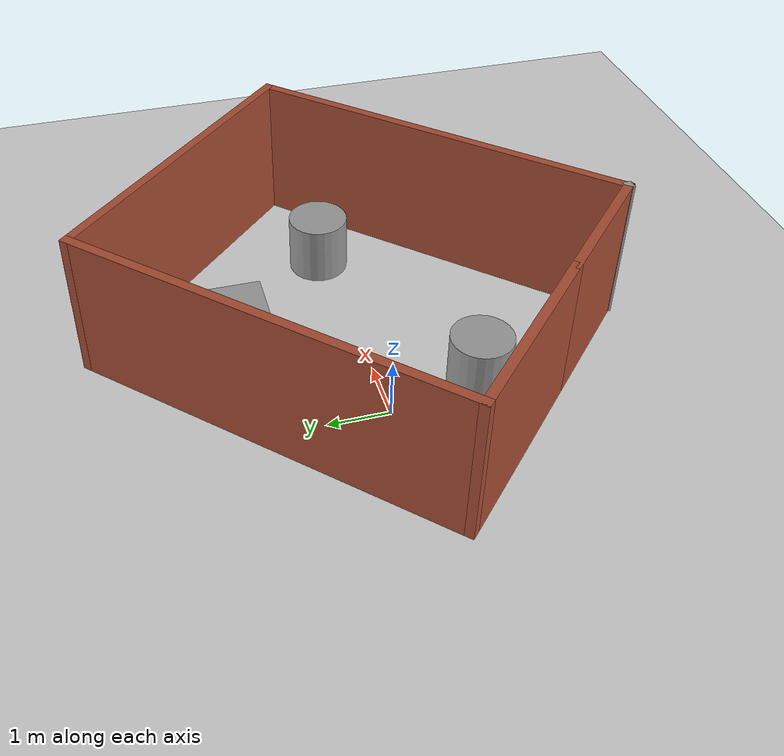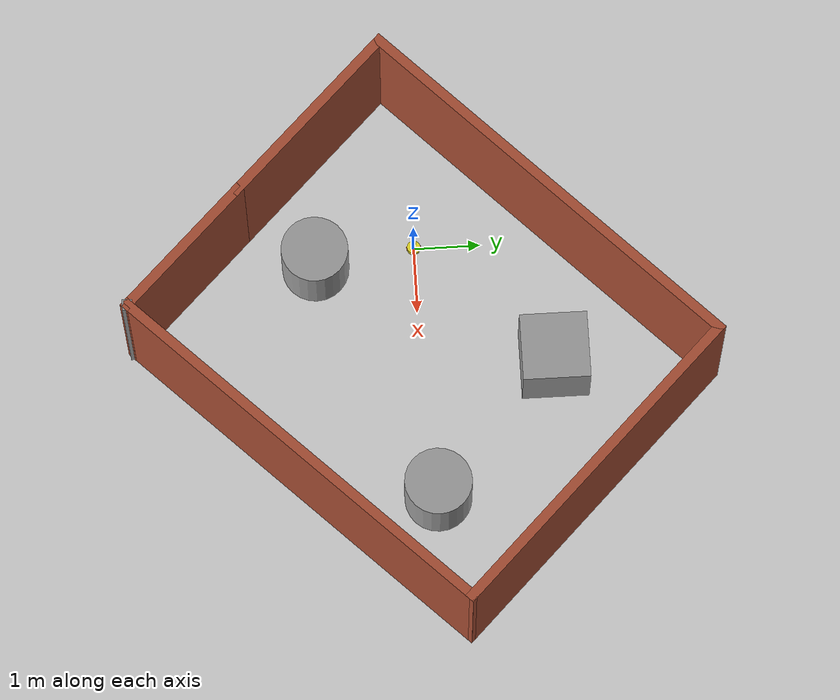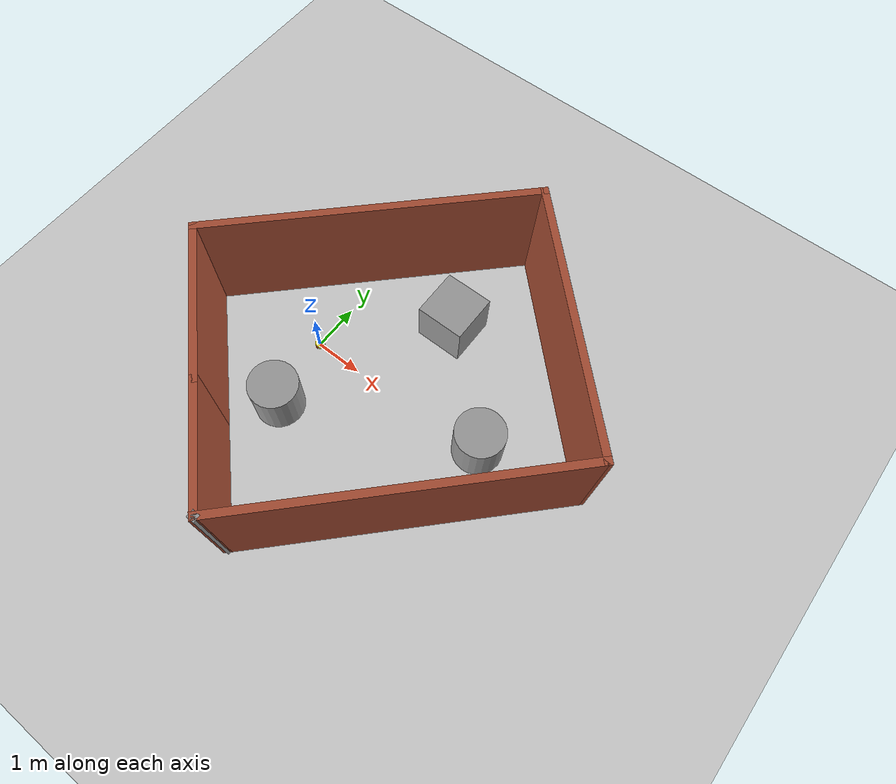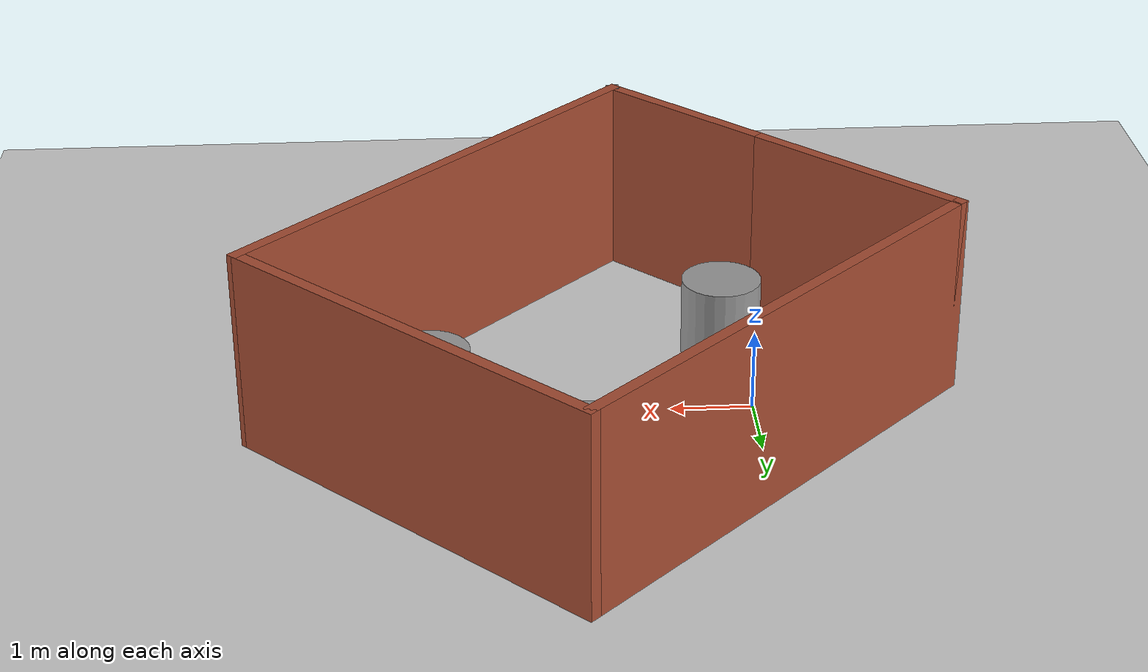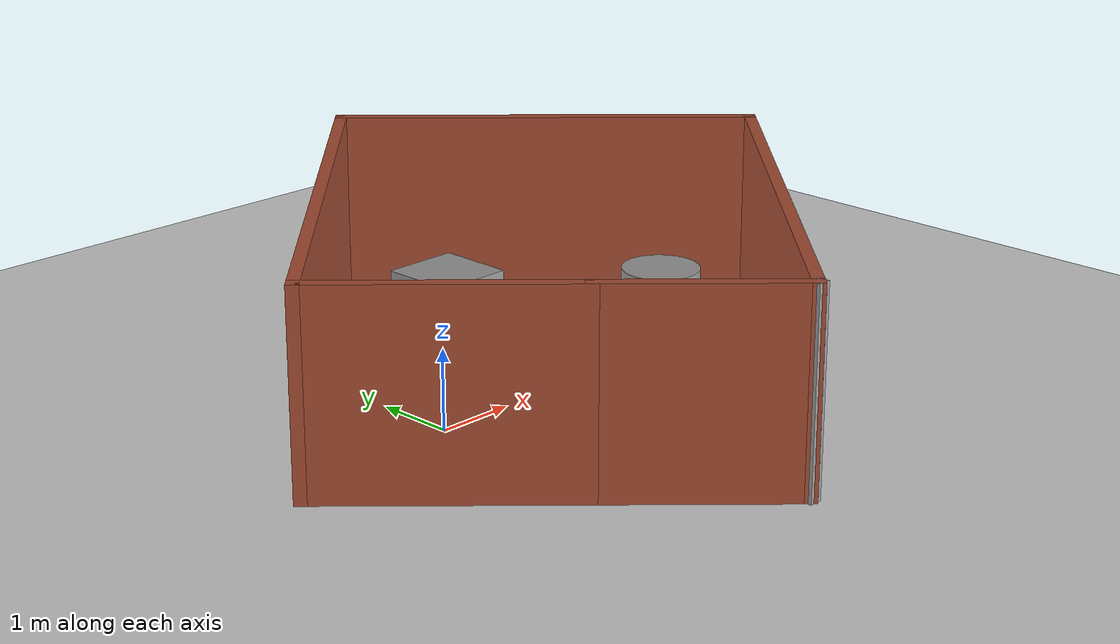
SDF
<sdf version="1.6">
 <world name="default">
  <light name="sun" type="directional">
   <pose>0 0 10 0 -0 0</pose>
   <diffuse>0.8 0.8 0.8 1</diffuse>
   <specular>0.2 0.2 0.2 1</specular>
   <attenuation>
    <range>1000</range>
    <constant>0.9</constant>
    <linear>0.01</linear>
    <quadratic>0.001</quadratic>
   </attenuation>
   <direction>-0.5 0.1 -0.9</direction>
  </light>
  <model name="ground_plane">
   <static>1</static>
   <link name="link">
    <collision name="collision">
     <geometry><plane><normal>0 0 1</normal><size>100 100</size></plane></geometry>
     <surface>
      <contact><collide_bitmask>65535</collide_bitmask></contact>
      <friction><ode><mu>100</mu><mu2>50</mu2></ode></friction>
     </surface>
    </collision>
    <visual name="visual">
     <cast_shadows>0</cast_shadows>
     <geometry><plane><normal>0 0 1</normal><size>100 100</size></plane></geometry>
     <material>
      <script><uri>file://media/materials/scripts/gazebo.material</uri><name>Gazebo/Grey</name></script>
     </material>
    </visual>
   </link>
  </model>
  <gravity>0 0 -9.8</gravity>
  <magnetic_field>6e-06 2.3e-05 -4.2e-05</magnetic_field>
  <atmosphere type="adiabatic"/>
  <physics name="default_physics" default="0" type="ode">
   <max_step_size>0.001</max_step_size>
   <real_time_factor>1</real_time_factor>
   <real_time_update_rate>1000</real_time_update_rate>
  </physics>
  <scene><ambient>0.4 0.4 0.4 1</ambient><background>0.7 0.7 0.7 1</background><shadows>1</shadows></scene>
  <audio><device>default</device></audio>
  <spherical_coordinates>
   <surface_model>EARTH_WGS84</surface_model>
   <latitude_deg>0</latitude_deg>
   <longitude_deg>0</longitude_deg>
   <elevation>0</elevation>
   <heading_deg>0</heading_deg>
  </spherical_coordinates>
  <model name="mycar">
   <link name="base_footprint">
    <inertial>
     <pose>0.00127 0 0.093611 0 -0 0</pose>
     <mass>0.63</mass>
     <inertia>
      <ixx>0.00557395</ixx>
      <ixy>0</ixy>
      <ixz>-1.11111e-05</ixz>
      <iyy>0.00563694</iyy>
      <iyz>0</iyz>
      <izz>0.00261003</izz>
     </inertia>
    </inertial>
    <collision name="base_footprint_fixed_joint_lump__base_link_collision">
     <pose>0 0 0.055 0 -0 0</pose>
     <geometry><cylinder><length>0.08</length><radius>0.1</radius></cylinder></geometry>
    </collision>
    <collision name="base_footprint_fixed_joint_lump__camera_collision_1">
     <pose>0.08 0 0.1075 0 -0 0</pose>
     <geometry><box><size>0.01 0.025 0.025</size></box></geometry>
    </collision>
    <collision name="base_footprint_fixed_joint_lump__support_collision_2">
     <pose>0 0 0.17 0 -0 0</pose>
     <geometry><cylinder><length>0.15</length><radius>0.01</radius></cylinder></geometry>
    </collision>
    <collision name="base_footprint_fixed_joint_lump__laser_collision_3">
     <pose>0 0 0.27 0 -0 0</pose>
     <geometry><cylinder><length>0.05</length><radius>0.03</radius></cylinder></geometry>
    </collision>
    <visual name="base_footprint_visual"><geometry><sphere><radius>0.001</radius></sphere></geometry></visual>
    <visual name="base_footprint_fixed_joint_lump__base_link_visual_1">
     <pose>0 0 0.055 0 -0 0</pose>
     <geometry><cylinder><length>0.08</length><radius>0.1</radius></cylinder></geometry>
     <material>
      <script><name>Gazebo/Yellow</name><uri>file://media/materials/scripts/gazebo.material</uri></script>
     </material>
    </visual>
    <visual name="base_footprint_fixed_joint_lump__camera_visual_2">
     <pose>0.08 0 0.1075 0 -0 0</pose>
     <geometry><box><size>0.01 0.025 0.025</size></box></geometry>
     <material>
      <script><name>Gazebo/Blue</name><uri>file://media/materials/scripts/gazebo.material</uri></script>
     </material>
    </visual>
    <visual name="base_footprint_fixed_joint_lump__support_visual_3">
     <pose>0 0 0.17 0 -0 0</pose>
     <geometry><cylinder><length>0.15</length><radius>0.01</radius></cylinder></geometry>
     <material>
      <script><name>Gazebo/White</name><uri>file://media/materials/scripts/gazebo.material</uri></script>
     </material>
    </visual>
    <visual name="base_footprint_fixed_joint_lump__laser_visual_4">
     <pose>0 0 0.27 0 -0 0</pose>
     <geometry><cylinder><length>0.05</length><radius>0.03</radius></cylinder></geometry>
     <material>
      <script><name>Gazebo/Black</name><uri>file://media/materials/scripts/gazebo.material</uri></script>
     </material>
    </visual>
    <sensor name="rplidar" type="ray">
     <visualize>1</visualize>
     <update_rate>5</update_rate>
     <ray>
      <scan>
       <horizontal>
        <samples>360</samples>
        <resolution>1</resolution>
        <min_angle>-3.14159</min_angle>
        <max_angle>3.14159</max_angle>
       </horizontal>
       <vertical><samples>1</samples><min_angle>0</min_angle><max_angle>0</max_angle></vertical>
      </scan>
      <range><min>0.1</min><max>10</max><resolution>0.01</resolution></range>
      <noise><type>gaussian</type><mean>0</mean><stddev>0.01</stddev></noise>
     </ray>
     <plugin name="gazebo_rplidar" filename="libgazebo_ros_laser.so">
      <topicName>/scan</topicName>
      <frameName>laser</frameName>
      <robotNamespace>/</robotNamespace>
     </plugin>
     <pose>0 0 0.27 0 -0 0</pose>
    </sensor>
   </link>
   <link name="back_wheel">
    <pose>-0.0925 0 0.0075 0 -0 0</pose>
    <inertial>
     <mass>0.03</mass>
     <inertia>
      <ixx>6.75e-07</ixx>
      <ixy>0</ixy>
      <ixz>0</ixz>
      <iyy>6.75e-07</iyy>
      <iyz>0</iyz>
      <izz>6.75e-07</izz>
     </inertia>
    </inertial>
    <collision name="back_wheel_collision">
     <geometry><sphere><radius>0.0075</radius></sphere></geometry>
    </collision>
    <visual name="back_wheel_visual">
     <geometry><sphere><radius>0.0075</radius></sphere></geometry>
     <material>
      <script><name>Gazebo/Red</name><uri>file://media/materials/scripts/gazebo.material</uri></script>
     </material>
    </visual>
   </link>
   <joint name="back_wheel2base_link" type="revolute">
    <child>back_wheel</child>
    <parent>base_footprint</parent>
    <axis>
     <xyz>1 1 1</xyz>
     <limit><lower>-1e+16</lower><upper>1e+16</upper></limit>
     <dynamics><spring_reference>0</spring_reference><spring_stiffness>0</spring_stiffness></dynamics>
     <use_parent_model_frame>1</use_parent_model_frame>
    </axis>
   </joint>
   <link name="front_wheel">
    <pose>0.0925 0 0.0075 0 -0 0</pose>
    <inertial>
     <mass>0.03</mass>
     <inertia>
      <ixx>6.75e-07</ixx>
      <ixy>0</ixy>
      <ixz>0</ixz>
      <iyy>6.75e-07</iyy>
      <iyz>0</iyz>
      <izz>6.75e-07</izz>
     </inertia>
    </inertial>
    <collision name="front_wheel_collision">
     <geometry><sphere><radius>0.0075</radius></sphere></geometry>
    </collision>
    <visual name="front_wheel_visual">
     <geometry><sphere><radius>0.0075</radius></sphere></geometry>
     <material>
      <script><name>Gazebo/Red</name><uri>file://media/materials/scripts/gazebo.material</uri></script>
     </material>
    </visual>
   </link>
   <joint name="front_wheel2base_link" type="revolute">
    <child>front_wheel</child>
    <parent>base_footprint</parent>
    <axis>
     <xyz>1 1 1</xyz>
     <limit><lower>-1e+16</lower><upper>1e+16</upper></limit>
     <dynamics><spring_reference>0</spring_reference><spring_stiffness>0</spring_stiffness></dynamics>
     <use_parent_model_frame>1</use_parent_model_frame>
    </axis>
   </joint>
   <link name="left_wheel">
    <pose>0 0.1 0.0325 0 -0 0</pose>
    <inertial>
     <mass>0.05</mass>
     <inertia>
      <ixx>1.41406e-05</ixx>
      <ixy>0</ixy>
      <ixz>0</ixz>
      <iyy>1.41406e-05</iyy>
      <iyz>0</iyz>
      <izz>2.64063e-05</izz>
     </inertia>
    </inertial>
    <collision name="left_wheel_collision">
     <pose>0 0 0 1.5708 -0 0</pose>
     <geometry><cylinder><length>0.015</length><radius>0.0325</radius></cylinder></geometry>
    </collision>
    <visual name="left_wheel_visual">
     <pose>0 0 0 1.5708 -0 0</pose>
     <geometry><cylinder><length>0.015</length><radius>0.0325</radius></cylinder></geometry>
     <material>
      <script><name>Gazebo/Red</name><uri>file://media/materials/scripts/gazebo.material</uri></script>
     </material>
    </visual>
   </link>
   <joint name="left_wheel2base_link" type="revolute">
    <child>left_wheel</child>
    <parent>base_footprint</parent>
    <axis>
     <xyz>0 1 0</xyz>
     <limit><lower>-1e+16</lower><upper>1e+16</upper></limit>
     <dynamics><spring_reference>0</spring_reference><spring_stiffness>0</spring_stiffness></dynamics>
     <use_parent_model_frame>1</use_parent_model_frame>
    </axis>
   </joint>
   <link name="right_wheel">
    <pose>0 -0.1 0.0325 0 -0 0</pose>
    <inertial>
     <mass>0.05</mass>
     <inertia>
      <ixx>1.41406e-05</ixx>
      <ixy>0</ixy>
      <ixz>0</ixz>
      <iyy>1.41406e-05</iyy>
      <iyz>0</iyz>
      <izz>2.64063e-05</izz>
     </inertia>
    </inertial>
    <collision name="right_wheel_collision">
     <pose>0 0 0 1.5708 -0 0</pose>
     <geometry><cylinder><length>0.015</length><radius>0.0325</radius></cylinder></geometry>
    </collision>
    <visual name="right_wheel_visual">
     <pose>0 0 0 1.5708 -0 0</pose>
     <geometry><cylinder><length>0.015</length><radius>0.0325</radius></cylinder></geometry>
     <material>
      <script><name>Gazebo/Red</name><uri>file://media/materials/scripts/gazebo.material</uri></script>
     </material>
    </visual>
   </link>
   <joint name="right_wheel2base_link" type="revolute">
    <child>right_wheel</child>
    <parent>base_footprint</parent>
    <axis>
     <xyz>0 1 0</xyz>
     <limit><lower>-1e+16</lower><upper>1e+16</upper></limit>
     <dynamics><spring_reference>0</spring_reference><spring_stiffness>0</spring_stiffness></dynamics>
     <use_parent_model_frame>1</use_parent_model_frame>
    </axis>
   </joint>
   <static>0</static>
   <plugin name="differential_drive_controller" filename="libgazebo_ros_diff_drive.so">
    <rosDebugLevel>Debug</rosDebugLevel>
    <publishWheelTF>1</publishWheelTF>
    <robotNamespace>/</robotNamespace>
    <publishTf>1</publishTf>
    <publishWheelJointState>1</publishWheelJointState>
    <alwaysOn>1</alwaysOn>
    <updateRate>100.0</updateRate>
    <legacyMode>1</legacyMode>
    <leftJoint>left_wheel2base_link</leftJoint>
    <rightJoint>right_wheel2base_link</rightJoint>
    <wheelSeparation>0.2</wheelSeparation>
    <wheelDiameter>0.065</wheelDiameter>
    <broadcastTF>1</broadcastTF>
    <wheelTorque>30</wheelTorque>
    <wheelAcceleration>1.8</wheelAcceleration>
    <commandTopic>cmd_vel</commandTopic>
    <odometryFrame>odom</odometryFrame>
    <odometryTopic>odom</odometryTopic>
    <robotBaseFrame>base_footprint</robotBaseFrame>
   </plugin>
   <pose>0.000288 -0.000264 0 0 0 -0.002989</pose>
  </model>
  <model name="room">
   <pose>1.78293 0.038618 0 0 -0 0</pose>
   <link name="Wall_1">
    <collision name="Wall_1_Collision">
     <geometry><box><size>3.25 0.15 2.5</size></box></geometry>
     <pose>0 0 1.25 0 -0 0</pose>
    </collision>
    <visual name="Wall_1_Visual">
     <pose>0 0 1.25 0 -0 0</pose>
     <geometry><box><size>3.25 0.15 2.5</size></box></geometry>
     <material>
      <script><uri>file://media/materials/scripts/gazebo.material</uri><name>Gazebo/Bricks</name></script>
      <ambient>1 1 1 1</ambient>
     </material>
     <meta><layer>0</layer></meta>
    </visual>
    <pose>-3.12895 -1.5026 0 0 -0 2.35619</pose>
   </link>
   <link name="Wall_10">
    <collision name="Wall_10_Collision">
     <geometry><box><size>5.5 0.15 2.5</size></box></geometry>
     <pose>0 0 1.25 0 -0 0</pose>
    </collision>
    <visual name="Wall_10_Visual">
     <pose>0 0 1.25 0 -0 0</pose>
     <geometry><box><size>5.5 0.15 2.5</size></box></geometry>
     <material>
      <script><uri>file://media/materials/scripts/gazebo.material</uri><name>Gazebo/Bricks</name></script>
      <ambient>1 1 1 1</ambient>
     </material>
     <meta><layer>0</layer></meta>
    </visual>
    <pose>2.33345 2.36881 0 0 -0 2.35619</pose>
   </link>
   <link name="Wall_4">
    <collision name="Wall_4_Collision">
     <geometry><box><size>6.75 0.15 2.5</size></box></geometry>
     <pose>0 0 1.25 0 -0 0</pose>
    </collision>
    <visual name="Wall_4_Visual">
     <pose>0 0 1.25 0 -0 0</pose>
     <geometry><box><size>6.75 0.15 2.5</size></box></geometry>
     <material>
      <script><uri>file://media/materials/scripts/gazebo.material</uri><name>Gazebo/Bricks</name></script>
      <ambient>1 1 1 1</ambient>
     </material>
     <meta><layer>0</layer></meta>
    </visual>
    <pose>-1.89151 1.92687 0 0 -0 0.785398</pose>
   </link>
   <link name="Wall_6">
    <collision name="Wall_6_Collision">
     <geometry><box><size>2.5 0.15 2.5</size></box></geometry>
     <pose>0 0 1.25 0 -0 0</pose>
    </collision>
    <visual name="Wall_6_Visual">
     <pose>0 0 1.25 0 -0 0</pose>
     <geometry><box><size>2.5 0.15 2.5</size></box></geometry>
     <material>
      <script><uri>file://media/materials/scripts/gazebo.material</uri><name>Gazebo/Bricks</name></script>
      <ambient>1 1 1 1</ambient>
     </material>
     <meta><layer>0</layer></meta>
    </visual>
    <pose>-1.20208 -3.42947 0 0 -0 -0.785398</pose>
   </link>
   <link name="Wall_7">
    <collision name="Wall_7_Collision">
     <geometry><box><size>0.16 0.15 2.5</size></box></geometry>
     <pose>0 0 1.25 0 -0 0</pose>
    </collision>
    <visual name="Wall_7_Visual">
     <pose>0 0 1.25 0 -0 0</pose>
     <geometry><box><size>0.16 0.15 2.5</size></box></geometry>
     <material>
      <script><uri>file://media/materials/scripts/gazebo.material</uri><name>Gazebo/Grey</name></script>
      <ambient>1 1 1 1</ambient>
     </material>
     <meta><layer>0</layer></meta>
    </visual>
    <pose>-0.366231 -4.26032 0 0 -0 0</pose>
   </link>
   <link name="Wall_9">
    <collision name="Wall_9_Collision">
     <geometry><box><size>6.75076 0.15 2.5</size></box></geometry>
     <pose>0 0 1.25 0 -0 0</pose>
    </collision>
    <visual name="Wall_9_Visual">
     <pose>0 0 1.25 0 -0 0</pose>
     <geometry><box><size>6.75076 0.15 2.5</size></box></geometry>
     <material>
      <script><uri>file://media/materials/scripts/gazebo.material</uri><name>Gazebo/Bricks</name></script>
      <ambient>1 1 1 1</ambient>
     </material>
     <meta><layer>0</layer></meta>
    </visual>
    <pose>1.92687 -1.89151 0 0 -0 0.800549</pose>
   </link>
   <static>1</static>
  </model>
  <model name="unit_cylinder">
   <pose>3.89208 0.149834 0.499997 3e-06 4e-06 -0</pose>
   <link name="link">
    <inertial>
     <mass>1</mass>
     <inertia><ixx>0.145833</ixx><ixy>0</ixy><ixz>0</ixz><iyy>0.145833</iyy><iyz>0</iyz><izz>0.125</izz></inertia>
    </inertial>
    <collision name="collision">
     <geometry><cylinder><radius>0.5</radius><length>1</length></cylinder></geometry>
    </collision>
    <visual name="visual">
     <geometry><cylinder><radius>0.5</radius><length>1</length></cylinder></geometry>
     <material>
      <script><name>Gazebo/Grey</name><uri>file://media/materials/scripts/gazebo.material</uri></script>
     </material>
    </visual>
   </link>
  </model>
  <model name="unit_cylinder_0">
   <pose>0.236753 -1.48301 0.499993 -3e-06 -4e-06 -0</pose>
   <link name="link">
    <inertial>
     <mass>1</mass>
     <inertia><ixx>0.145833</ixx><ixy>0</ixy><ixz>0</ixz><iyy>0.145833</iyy><iyz>0</iyz><izz>0.125</izz></inertia>
    </inertial>
    <collision name="collision">
     <geometry><cylinder><radius>0.5</radius><length>1</length></cylinder></geometry>
    </collision>
    <visual name="visual">
     <geometry><cylinder><radius>0.5</radius><length>1</length></cylinder></geometry>
     <material>
      <script><name>Gazebo/Grey</name><uri>file://media/materials/scripts/gazebo.material</uri></script>
     </material>
    </visual>
   </link>
  </model>
  <model name="unit_box">
   <pose>1.92264 1.98179 0.5 0 -0 0</pose>
   <link name="link">
    <inertial>
     <mass>1</mass>
     <inertia>
      <ixx>0.166667</ixx>
      <ixy>0</ixy>
      <ixz>0</ixz>
      <iyy>0.166667</iyy>
      <iyz>0</iyz>
      <izz>0.166667</izz>
     </inertia>
    </inertial>
    <collision name="collision"><geometry><box><size>1 1 1</size></box></geometry></collision>
    <visual name="visual">
     <geometry><box><size>1 1 1</size></box></geometry>
     <material>
      <script><name>Gazebo/Grey</name><uri>file://media/materials/scripts/gazebo.material</uri></script>
     </material>
    </visual>
   </link>
  </model>
 </world>
</sdf>
